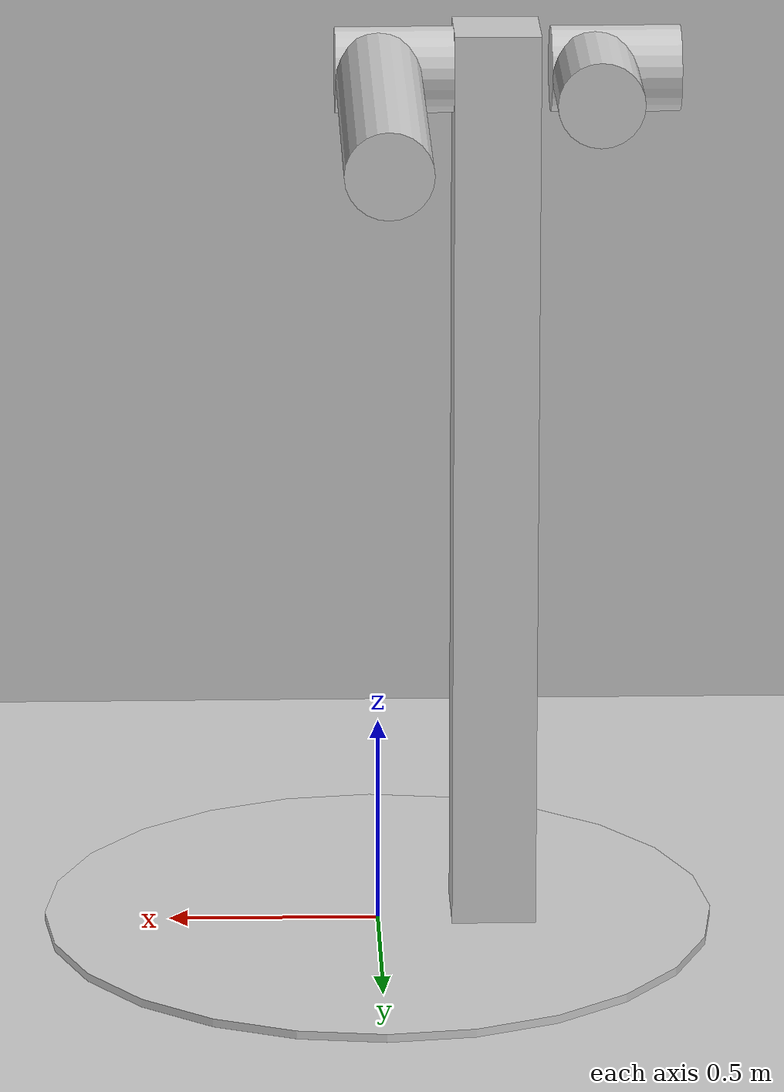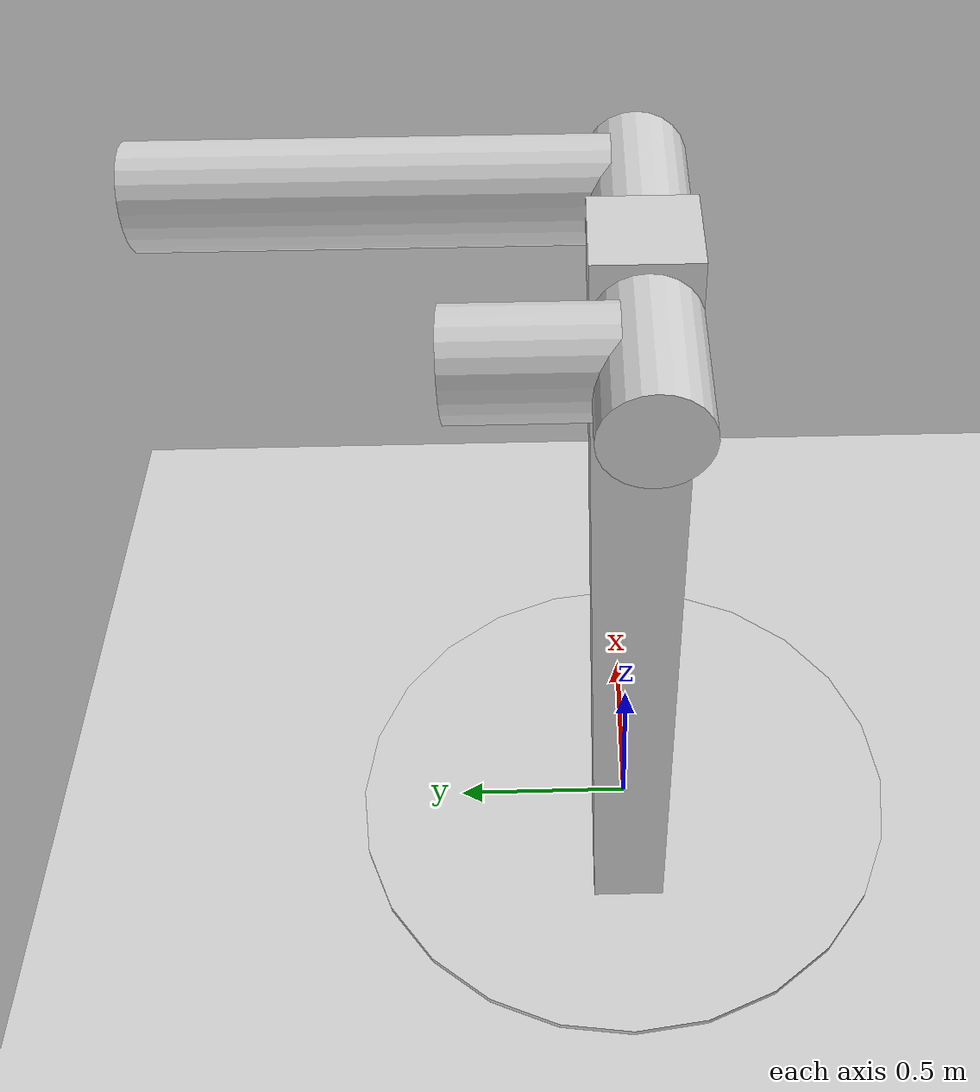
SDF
<?xml version="1.0" ?>
<sdf version="1.6">
  <world name="default">
    <physics name="1ms" type="ode">
      <max_step_size>0.001</max_step_size>
      <real_time_factor>0</real_time_factor>
    </physics>

    <light type="directional" name="sun">
      <cast_shadows>true</cast_shadows>
      <pose>0 0 10 0 0 0</pose>
      <diffuse>0.8 0.8 0.8 1</diffuse>
      <specular>0.2 0.2 0.2 1</specular>
      <attenuation>
        <range>1000</range>
        <constant>0.9</constant>
        <linear>0.01</linear>
        <quadratic>0.001</quadratic>
      </attenuation>
      <direction>-0.5 0.1 -0.9</direction>
    </light>

    <model name="ground_plane">
      <static>true</static>
      <link name="link">
        <collision name="collision">
          <geometry>
            <plane>
              <normal>0 0 1</normal>
              <size>100 100</size>
            </plane>
          </geometry>
        </collision>
        <visual name="visual">
          <geometry>
            <plane>
              <normal>0 0 1</normal>
              <size>100 100</size>
            </plane>
          </geometry>
          <material>
            <ambient>0.8 0.8 0.8 1</ambient>
            <diffuse>0.8 0.8 0.8 1</diffuse>
            <specular>0.8 0.8 0.8 1</specular>
          </material>
        </visual>
      </link>
    </model>

    <model name="pendulum_with_base">
      <pose>0 0 0 0 0 0</pose>
      <link name="base">
        <inertial>
          <mass>100</mass>
        </inertial>
        <visual name="vis_plate_on_ground">
          <pose>0 0 0.01 0 0 0</pose>
          <geometry>
            <cylinder>
              <radius>0.8</radius>
              <length>0.02</length>
            </cylinder>
          </geometry>
          <material>
            <ambient>0.8 0.8 0.8 1</ambient>
            <diffuse>0.8 0.8 0.8 1</diffuse>
            <specular>0.8 0.8 0.8 1</specular>
          </material>
        </visual>
        <visual name="vis_pole">
          <pose>-0.275 0 1.1 0 0 0</pose>
          <geometry>
            <box>
              <size>0.2 0.2 2.2</size>
            </box>
          </geometry>
          <material>
            <ambient>0.8 0.8 0.8 1</ambient>
            <diffuse>0.8 0.8 0.8 1</diffuse>
            <specular>0.8 0.8 0.8 1</specular>
          </material>
        </visual>
        <collision name="col_plate_on_ground">
          <pose>0 0 0.01 0 0 0</pose>
          <geometry>
            <cylinder>
              <radius>0.8</radius>
              <length>0.02</length>
            </cylinder>
          </geometry>
        </collision>
        <collision name="col_pole">
          <pose>-0.275 0 1.1 0 0 0</pose>
          <geometry>
            <box>
              <size>0.2 0.2 2.2</size>
            </box>
          </geometry>
        </collision>
      </link>

      <!-- upper link 1, length 1, IC -90 degrees -->
      <link name="upper_link_1">
        <pose>0 0 2.1 -1.5708 0 0</pose>
        <self_collide>0</self_collide>
        <inertial>
          <pose>0 0 0.5 0 0 0</pose>
        </inertial>
        <visual name="vis_upper_joint">
          <pose>-0.05 0 0 0 1.5708 0</pose>
          <geometry>
            <cylinder>
              <radius>0.1</radius>
              <length>0.3</length>
            </cylinder>
          </geometry>
          <material>
            <ambient>0.8 0.8 0.8 1</ambient>
            <diffuse>0.8 0.8 0.8 1</diffuse>
            <specular>0.8 0.8 0.8 1</specular>
          </material>
        </visual>
        <visual name="vis_cylinder">
          <pose>0 0 0.5 0 0 0</pose>
          <geometry>
            <cylinder>
              <radius>0.1</radius>
              <length>0.9</length>
            </cylinder>
          </geometry>
          <material>
            <ambient>0.8 0.8 0.8 1</ambient>
            <diffuse>0.8 0.8 0.8 1</diffuse>
            <specular>0.8 0.8 0.8 1</specular>
          </material>
        </visual>
        <collision name="col_upper_joint">
          <pose>-0.05 0 0 0 1.5708 0</pose>
          <geometry>
            <cylinder>
              <radius>0.1</radius>
              <length>0.3</length>
            </cylinder>
          </geometry>
        </collision>
        <collision name="col_cylinder">
          <pose>0 0 0.5 0 0 0</pose>
          <geometry>
            <cylinder>
              <radius>0.1</radius>
              <length>0.9</length>
            </cylinder>
          </geometry>
        </collision>
      </link>

      <!-- upper link 2, length 0.5, IC -90 degrees -->
      <link name="upper_link_2">
        <pose>-0.5 0 2.1 -1.5708 0 0</pose>
        <self_collide>0</self_collide>
        <inertial>
          <pose>0 0 0.2 0 0 0</pose>
        </inertial>
        <visual name="vis_upper_joint_2">
          <pose>-0.05 0 0 0 1.5708 0</pose>
          <geometry>
            <cylinder>
              <radius>0.1</radius>
              <length>0.3</length>
            </cylinder>
          </geometry>
          <material>
            <ambient>0.8 0.8 0.8 1</ambient>
            <diffuse>0.8 0.8 0.8 1</diffuse>
            <specular>0.8 0.8 0.8 1</specular>
          </material>
        </visual>
        <visual name="vis_cylinder_2">
          <pose>0 0 0.2 0 0 0</pose>
          <geometry>
            <cylinder>
              <radius>0.1</radius>
              <length>0.3</length>
            </cylinder>
          </geometry>
          <material>
            <ambient>0.8 0.8 0.8 1</ambient>
            <diffuse>0.8 0.8 0.8 1</diffuse>
            <specular>0.8 0.8 0.8 1</specular>
          </material>
        </visual>
        <collision name="col_upper_joint_2">
          <pose>-0.05 0 0 0 1.5708 0</pose>
          <geometry>
            <cylinder>
              <radius>0.1</radius>
              <length>0.3</length>
            </cylinder>
          </geometry>
        </collision>
        <collision name="col_cylinder_2">
          <pose>0 0 0.2 0 0 0</pose>
          <geometry>
            <cylinder>
              <radius>0.1</radius>
              <length>0.3</length>
            </cylinder>
          </geometry>
        </collision>
      </link>

      <joint name="upper_joint_1" type="revolute">
        <parent>base</parent>
        <child>upper_link_1</child>
        <axis>
          <xyz>1.0 0 0</xyz>
        </axis>
      </joint>

      <joint name="upper_joint_2" type="revolute">
        <parent>base</parent>
        <child>upper_link_2</child>
        <axis>
          <xyz>1.0 0 0</xyz>
        </axis>
      </joint>

    </model>

  </world>
</sdf>
